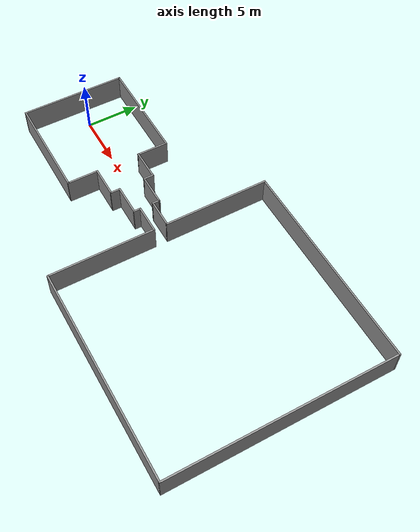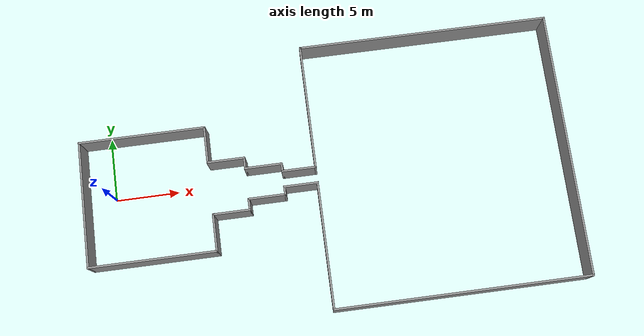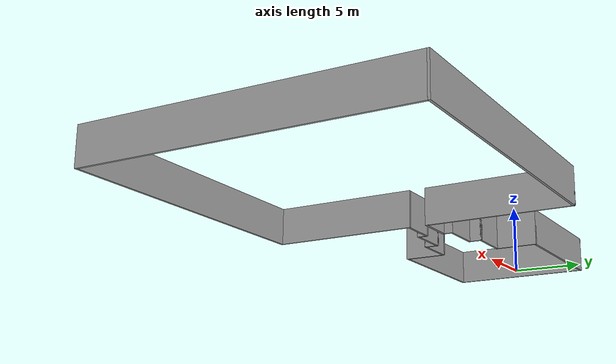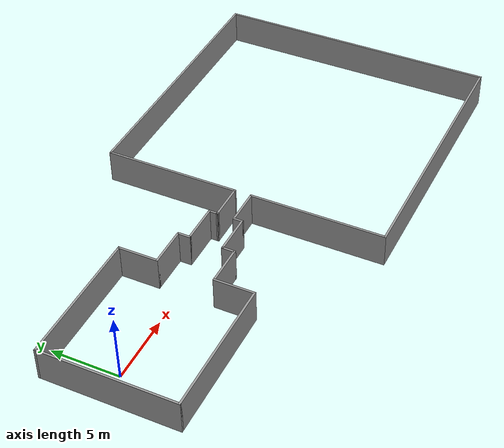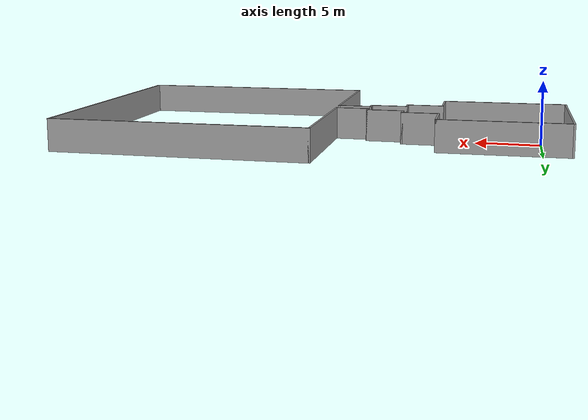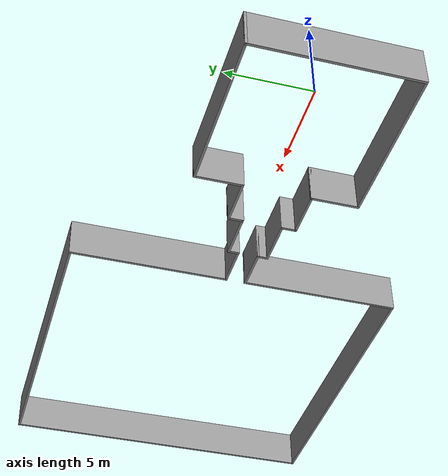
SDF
<?xml version='1.0'?>
<sdf version='1.7'>
  <model name='formationSim'>
    <pose>16.9071 -0.494731 0 0 -0 0</pose>
    <link name='Wall_49'>
      <collision name='Wall_49_Collision'>
        <geometry>
          <box>
            <size>10 0.15 2.5</size>
          </box>
        </geometry>
        <pose>0 0 1.25 0 -0 0</pose>
      </collision>
      <visual name='Wall_49_Visual'>
        <pose>0 0 1.25 0 -0 0</pose>
        <geometry>
          <box>
            <size>10 0.15 2.5</size>
          </box>
        </geometry>
        <material>
          <script>
            <uri>file://media/materials/scripts/gazebo.material</uri>
            <name>Gazebo/Grey</name>
          </script>
          <ambient>1 1 1 1</ambient>
        </material>
        <meta>
          <layer>0</layer>
        </meta>
      </visual>
      <pose>-19 0 0 0 -0 -1.5708</pose>
    </link>
    <link name='Wall_51'>
      <collision name='Wall_51_Collision'>
        <geometry>
          <box>
            <size>10 0.15 2.5</size>
          </box>
        </geometry>
        <pose>0 0 1.25 0 -0 0</pose>
      </collision>
      <visual name='Wall_51_Visual'>
        <pose>0 0 1.25 0 -0 0</pose>
        <geometry>
          <box>
            <size>10 0.15 2.5</size>
          </box>
        </geometry>
        <material>
          <script>
            <uri>file://media/materials/scripts/gazebo.material</uri>
            <name>Gazebo/Grey</name>
          </script>
          <ambient>1 1 1 1</ambient>
        </material>
        <meta>
          <layer>0</layer>
        </meta>
      </visual>
      <pose>-14.075 4.925 0 0 -0 0</pose>
    </link>
    <link name='Wall_52'>
      <collision name='Wall_52_Collision'>
        <geometry>
          <box>
            <size>3 0.15 2.5</size>
          </box>
        </geometry>
        <pose>0 0 1.25 0 -0 0</pose>
      </collision>
      <visual name='Wall_52_Visual'>
        <pose>0 0 1.25 0 -0 0</pose>
        <geometry>
          <box>
            <size>3 0.15 2.5</size>
          </box>
        </geometry>
        <material>
          <script>
            <uri>file://media/materials/scripts/gazebo.material</uri>
            <name>Gazebo/Grey</name>
          </script>
          <ambient>1 1 1 1</ambient>
        </material>
        <meta>
          <layer>0</layer>
        </meta>
      </visual>
      <pose>-9.15 3.5 0 0 -0 -1.5708</pose>
    </link>
    <link name='Wall_53'>
      <collision name='Wall_53_Collision'>
        <geometry>
          <box>
            <size>3 0.15 2.5</size>
          </box>
        </geometry>
        <pose>0 0 1.25 0 -0 0</pose>
      </collision>
      <visual name='Wall_53_Visual'>
        <pose>0 0 1.25 0 -0 0</pose>
        <geometry>
          <box>
            <size>3 0.15 2.5</size>
          </box>
        </geometry>
        <material>
          <script>
            <uri>file://media/materials/scripts/gazebo.material</uri>
            <name>Gazebo/Grey</name>
          </script>
          <ambient>1 1 1 1</ambient>
        </material>
        <meta>
          <layer>0</layer>
        </meta>
      </visual>
      <pose>-7.725 2.075 0 0 -0 0</pose>
    </link>
    <link name='Wall_55'>
      <collision name='Wall_55_Collision'>
        <geometry>
          <box>
            <size>10 0.15 2.5</size>
          </box>
        </geometry>
        <pose>0 0 1.25 0 -0 0</pose>
      </collision>
      <visual name='Wall_55_Visual'>
        <pose>0 0 1.25 0 -0 0</pose>
        <geometry>
          <box>
            <size>10 0.15 2.5</size>
          </box>
        </geometry>
        <material>
          <script>
            <uri>file://media/materials/scripts/gazebo.material</uri>
            <name>Gazebo/Grey</name>
          </script>
          <ambient>1 1 1 1</ambient>
        </material>
        <meta>
          <layer>0</layer>
        </meta>
      </visual>
      <pose>-14.075 -4.925 0 0 -0 0</pose>
    </link>
    <link name='Wall_56'>
      <collision name='Wall_56_Collision'>
        <geometry>
          <box>
            <size>3 0.15 2.5</size>
          </box>
        </geometry>
        <pose>0 0 1.25 0 -0 0</pose>
      </collision>
      <visual name='Wall_56_Visual'>
        <pose>0 0 1.25 0 -0 0</pose>
        <geometry>
          <box>
            <size>3 0.15 2.5</size>
          </box>
        </geometry>
        <material>
          <script>
            <uri>file://media/materials/scripts/gazebo.material</uri>
            <name>Gazebo/Grey</name>
          </script>
          <ambient>1 1 1 1</ambient>
        </material>
        <meta>
          <layer>0</layer>
        </meta>
      </visual>
      <pose>-9.15 -3.5 0 0 -0 1.5708</pose>
    </link>
    <link name='Wall_57'>
      <collision name='Wall_57_Collision'>
        <geometry>
          <box>
            <size>3 0.15 2.5</size>
          </box>
        </geometry>
        <pose>0 0 1.25 0 -0 0</pose>
      </collision>
      <visual name='Wall_57_Visual'>
        <pose>0 0 1.25 0 -0 0</pose>
        <geometry>
          <box>
            <size>3 0.15 2.5</size>
          </box>
        </geometry>
        <material>
          <script>
            <uri>file://media/materials/scripts/gazebo.material</uri>
            <name>Gazebo/Grey</name>
          </script>
          <ambient>1 1 1 1</ambient>
        </material>
        <meta>
          <layer>0</layer>
        </meta>
      </visual>
      <pose>-7.725 -2.075 0 0 -0 0</pose>
    </link>
    <link name='Wall_59'>
      <collision name='Wall_59_Collision'>
        <geometry>
          <box>
            <size>1 0.15 2.5</size>
          </box>
        </geometry>
        <pose>0 0 1.25 0 -0 0</pose>
      </collision>
      <visual name='Wall_59_Visual'>
        <pose>0 0 1.25 0 -0 0</pose>
        <geometry>
          <box>
            <size>1 0.15 2.5</size>
          </box>
        </geometry>
        <material>
          <script>
            <uri>file://media/materials/scripts/gazebo.material</uri>
            <name>Gazebo/Grey</name>
          </script>
          <ambient>1 1 1 1</ambient>
        </material>
        <meta>
          <layer>0</layer>
        </meta>
      </visual>
      <pose>-6.3 1.65 0 0 -0 -1.5708</pose>
    </link>
    <link name='Wall_61'>
      <collision name='Wall_61_Collision'>
        <geometry>
          <box>
            <size>1 0.15 2.5</size>
          </box>
        </geometry>
        <pose>0 0 1.25 0 -0 0</pose>
      </collision>
      <visual name='Wall_61_Visual'>
        <pose>0 0 1.25 0 -0 0</pose>
        <geometry>
          <box>
            <size>1 0.15 2.5</size>
          </box>
        </geometry>
        <material>
          <script>
            <uri>file://media/materials/scripts/gazebo.material</uri>
            <name>Gazebo/Grey</name>
          </script>
          <ambient>1 1 1 1</ambient>
        </material>
        <meta>
          <layer>0</layer>
        </meta>
      </visual>
      <pose>-6.3 -1.65 0 0 -0 1.5708</pose>
    </link>
    <link name='Wall_62'>
      <collision name='Wall_62_Collision'>
        <geometry>
          <box>
            <size>3 0.15 2.5</size>
          </box>
        </geometry>
        <pose>0 0 1.25 0 -0 0</pose>
      </collision>
      <visual name='Wall_62_Visual'>
        <pose>0 0 1.25 0 -0 0</pose>
        <geometry>
          <box>
            <size>3 0.15 2.5</size>
          </box>
        </geometry>
        <material>
          <script>
            <uri>file://media/materials/scripts/gazebo.material</uri>
            <name>Gazebo/Grey</name>
          </script>
          <ambient>1 1 1 1</ambient>
        </material>
        <meta>
          <layer>0</layer>
        </meta>
      </visual>
      <pose>-4.875 -1.225 0 0 -0 0</pose>
    </link>
    <link name='Wall_64'>
      <collision name='Wall_64_Collision'>
        <geometry>
          <box>
            <size>3 0.15 2.5</size>
          </box>
        </geometry>
        <pose>0 0 1.25 0 -0 0</pose>
      </collision>
      <visual name='Wall_64_Visual'>
        <pose>0 0 1.25 0 -0 0</pose>
        <geometry>
          <box>
            <size>3 0.15 2.5</size>
          </box>
        </geometry>
        <material>
          <script>
            <uri>file://media/materials/scripts/gazebo.material</uri>
            <name>Gazebo/Grey</name>
          </script>
          <ambient>1 1 1 1</ambient>
        </material>
        <meta>
          <layer>0</layer>
        </meta>
      </visual>
      <pose>-4.875 1.225 0 0 -0 0</pose>
    </link>
    <link name='Wall_65'>
      <collision name='Wall_65_Collision'>
        <geometry>
          <box>
            <size>0.75 0.15 2.5</size>
          </box>
        </geometry>
        <pose>0 0 1.25 0 -0 0</pose>
      </collision>
      <visual name='Wall_65_Visual'>
        <pose>0 0 1.25 0 -0 0</pose>
        <geometry>
          <box>
            <size>0.75 0.15 2.5</size>
          </box>
        </geometry>
        <material>
          <script>
            <uri>file://media/materials/scripts/gazebo.material</uri>
            <name>Gazebo/Grey</name>
          </script>
          <ambient>1 1 1 1</ambient>
        </material>
        <meta>
          <layer>0</layer>
        </meta>
      </visual>
      <pose>-3.45 0.925 0 0 -0 -1.5708</pose>
    </link>
    <link name='Wall_66'>
      <collision name='Wall_66_Collision'>
        <geometry>
          <box>
            <size>2.75 0.15 2.5</size>
          </box>
        </geometry>
        <pose>0 0 1.25 0 -0 0</pose>
      </collision>
      <visual name='Wall_66_Visual'>
        <pose>0 0 1.25 0 -0 0</pose>
        <geometry>
          <box>
            <size>2.75 0.15 2.5</size>
          </box>
        </geometry>
        <material>
          <script>
            <uri>file://media/materials/scripts/gazebo.material</uri>
            <name>Gazebo/Grey</name>
          </script>
          <ambient>1 1 1 1</ambient>
        </material>
        <meta>
          <layer>0</layer>
        </meta>
      </visual>
      <pose>-2.15 0.625 0 0 -0 0</pose>
    </link>
    <link name='Wall_68'>
      <collision name='Wall_68_Collision'>
        <geometry>
          <box>
            <size>0.75 0.15 2.5</size>
          </box>
        </geometry>
        <pose>0 0 1.25 0 -0 0</pose>
      </collision>
      <visual name='Wall_68_Visual'>
        <pose>0 0 1.25 0 -0 0</pose>
        <geometry>
          <box>
            <size>0.75 0.15 2.5</size>
          </box>
        </geometry>
        <material>
          <script>
            <uri>file://media/materials/scripts/gazebo.material</uri>
            <name>Gazebo/Grey</name>
          </script>
          <ambient>1 1 1 1</ambient>
        </material>
        <meta>
          <layer>0</layer>
        </meta>
      </visual>
      <pose>-3.45 -0.925 0 0 -0 1.5708</pose>
    </link>
    <link name='Wall_69'>
      <collision name='Wall_69_Collision'>
        <geometry>
          <box>
            <size>2.75 0.15 2.5</size>
          </box>
        </geometry>
        <pose>0 0 1.25 0 -0 0</pose>
      </collision>
      <visual name='Wall_69_Visual'>
        <pose>0 0 1.25 0 -0 0</pose>
        <geometry>
          <box>
            <size>2.75 0.15 2.5</size>
          </box>
        </geometry>
        <material>
          <script>
            <uri>file://media/materials/scripts/gazebo.material</uri>
            <name>Gazebo/Grey</name>
          </script>
          <ambient>1 1 1 1</ambient>
        </material>
        <meta>
          <layer>0</layer>
        </meta>
      </visual>
      <pose>-2.15 -0.625 0 0 -0 0</pose>
    </link>
    <link name='Wall_71'>
      <collision name='Wall_71_Collision'>
        <geometry>
          <box>
            <size>10 0.15 2.5</size>
          </box>
        </geometry>
        <pose>0 0 1.25 0 -0 0</pose>
      </collision>
      <visual name='Wall_71_Visual'>
        <pose>0 0 1.25 0 -0 0</pose>
        <geometry>
          <box>
            <size>10 0.15 2.5</size>
          </box>
        </geometry>
        <material>
          <script>
            <uri>file://media/materials/scripts/gazebo.material</uri>
            <name>Gazebo/Grey</name>
          </script>
          <ambient>1 1 1 1</ambient>
        </material>
        <meta>
          <layer>0</layer>
        </meta>
      </visual>
      <pose>-0.850001 5.55 0 0 -0 1.5708</pose>
    </link>
    <link name='Wall_72'>
      <collision name='Wall_72_Collision'>
        <geometry>
          <box>
            <size>20 0.15 2.5</size>
          </box>
        </geometry>
        <pose>0 0 1.25 0 -0 0</pose>
      </collision>
      <visual name='Wall_72_Visual'>
        <pose>0 0 1.25 0 -0 0</pose>
        <geometry>
          <box>
            <size>20 0.15 2.5</size>
          </box>
        </geometry>
        <material>
          <script>
            <uri>file://media/materials/scripts/gazebo.material</uri>
            <name>Gazebo/Grey</name>
          </script>
          <ambient>1 1 1 1</ambient>
        </material>
        <meta>
          <layer>0</layer>
        </meta>
      </visual>
      <pose>9.075 10.475 0 0 -0 0</pose>
    </link>
    <link name='Wall_74'>
      <collision name='Wall_74_Collision'>
        <geometry>
          <box>
            <size>10 0.15 2.5</size>
          </box>
        </geometry>
        <pose>0 0 1.25 0 -0 0</pose>
      </collision>
      <visual name='Wall_74_Visual'>
        <pose>0 0 1.25 0 -0 0</pose>
        <geometry>
          <box>
            <size>10 0.15 2.5</size>
          </box>
        </geometry>
        <material>
          <script>
            <uri>file://media/materials/scripts/gazebo.material</uri>
            <name>Gazebo/Grey</name>
          </script>
          <ambient>1 1 1 1</ambient>
        </material>
        <meta>
          <layer>0</layer>
        </meta>
      </visual>
      <pose>-0.850001 -5.55 0 0 -0 -1.5708</pose>
    </link>
    <link name='Wall_75'>
      <collision name='Wall_75_Collision'>
        <geometry>
          <box>
            <size>20 0.15 2.5</size>
          </box>
        </geometry>
        <pose>0 0 1.25 0 -0 0</pose>
      </collision>
      <visual name='Wall_75_Visual'>
        <pose>0 0 1.25 0 -0 0</pose>
        <geometry>
          <box>
            <size>20 0.15 2.5</size>
          </box>
        </geometry>
        <material>
          <script>
            <uri>file://media/materials/scripts/gazebo.material</uri>
            <name>Gazebo/Grey</name>
          </script>
          <ambient>1 1 1 1</ambient>
        </material>
        <meta>
          <layer>0</layer>
        </meta>
      </visual>
      <pose>9.075 -10.475 0 0 -0 0</pose>
    </link>
    <link name='Wall_76'>
      <collision name='Wall_76_Collision'>
        <geometry>
          <box>
            <size>21 0.15 2.5</size>
          </box>
        </geometry>
        <pose>0 0 1.25 0 -0 0</pose>
      </collision>
      <visual name='Wall_76_Visual'>
        <pose>0 0 1.25 0 -0 0</pose>
        <geometry>
          <box>
            <size>21 0.15 2.5</size>
          </box>
        </geometry>
        <material>
          <script>
            <uri>file://media/materials/scripts/gazebo.material</uri>
            <name>Gazebo/Grey</name>
          </script>
          <ambient>1 1 1 1</ambient>
        </material>
        <meta>
          <layer>0</layer>
        </meta>
      </visual>
      <pose>19 -0.05 0 0 -0 1.5708</pose>
    </link>
    <static>1</static>
  </model>
</sdf>
